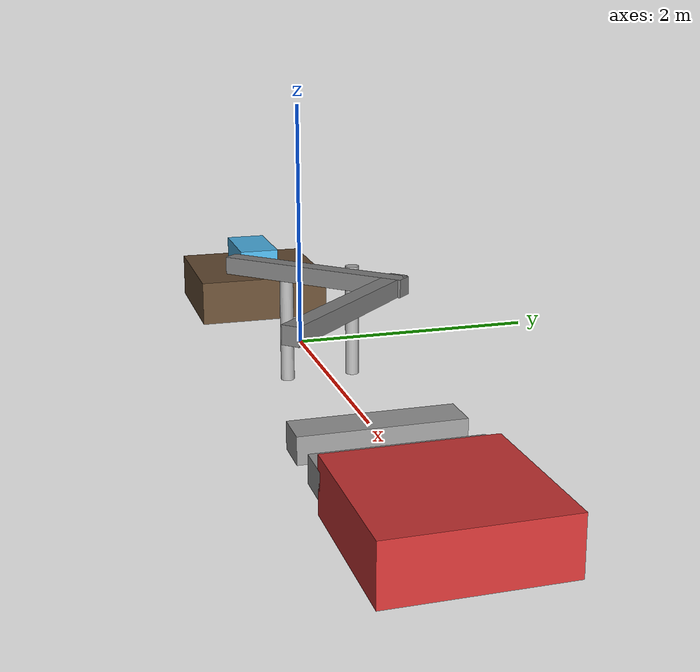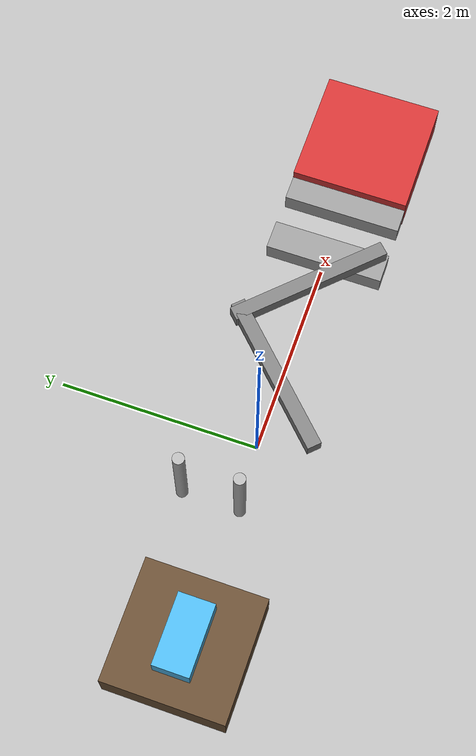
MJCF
<mujoco>
  <option integrator="RK4" timestep="0.002"/>

  <compiler angle="radian" meshdir="../assets" balanceinertia="true"/>

  <worldbody>
    <!-- Освещение и камера -->
    <light name="top" pos="0 0 4" dir="0 0 -1"/>
    <camera name="side" pos="0 -3 1.5" xyaxes="1 0 0 0 1 1.5"/>

    <!-- Стартовая платформа -->
    <body name="start_platform" pos="-2 0 0">
      <geom type="box" size="0.6 0.6 0.2" rgba="0.4 0.3 0.2 1"/>
    </body>

    <!-- Основное тело робота -->
    <body name="base" pos="-2 0 0.3" euler="0 0 0">
      <freejoint name="free_joint"/>
      <geom name="torso" type="box" size="0.35 0.18 0.12" mass="8" rgba="0.3 0.7 0.9 1"/>

      <!-- Передняя правая нога -->
      <body name="fr_hip" pos="0.25 0.12 -0.05">
        <joint name="fr_hip_joint" type="hinge" axis="0 0 1" range="-1.57 1.57"/>
        <geom type="capsule" fromto="0 0 0 0 0 -0.1" size="0.04"/>
        <body name="fr_thigh">
          <joint name="fr_knee_joint" type="hinge" axis="1 0 0" range="-2.0 2.0"/>
          <geom type="capsule" fromto="0 0 0 0 0 -0.25" size="0.035"/>
        </body>
      </body>

      <!-- Передняя левая нога -->
      <body name="fl_hip" pos="0.25 -0.12 -0.05">
        <joint name="fl_hip_joint" type="hinge" axis="0 0 1" range="-1.57 1.57"/>
        <geom type="capsule" fromto="0 0 0 0 0 -0.1" size="0.04"/>
        <body name="fl_thigh">
          <joint name="fl_knee_joint" type="hinge" axis="1 0 0" range="-2.0 2.0"/>
          <geom type="capsule" fromto="0 0 0 0 0 -0.25" size="0.035"/>
        </body>
      </body>

      <!-- Задняя правая нога -->
      <body name="rr_hip" pos="-0.25 0.12 -0.05">
        <joint name="rr_hip_joint" type="hinge" axis="0 0 1" range="-1.57 1.57"/>
        <geom type="capsule" fromto="0 0 0 0 0 -0.1" size="0.04"/>
        <body name="rr_thigh">
          <joint name="rr_knee_joint" type="hinge" axis="1 0 0" range="-2.0 2.0"/>
          <geom type="capsule" fromto="0 0 0 0 0 -0.25" size="0.035"/>
        </body>
      </body>

      <!-- Задняя левая нога -->
      <body name="rl_hip" pos="-0.25 -0.12 -0.05">
        <joint name="rl_hip_joint" type="hinge" axis="0 0 1" range="-1.57 1.57"/>
        <geom type="capsule" fromto="0 0 0 0 0 -0.1" size="0.04"/>
        <body name="rl_thigh">
          <joint name="rl_knee_joint" type="hinge" axis="1 0 0" range="-2.0 2.0"/>
          <geom type="capsule" fromto="0 0 0 0 0 -0.25" size="0.035"/>
        </body>
      </body>
    </body>

    <!-- Препятствия -->
    <!-- Столбы -->
    <body name="pole1" pos="-0.5 0 0">
      <geom type="cylinder" size="0.06 0.5" rgba="0.7 0.7 0.7 1"/>
    </body>
    <body name="pole2" pos="-0.5 0.6 0">
      <geom type="cylinder" size="0.06 0.5" rgba="0.7 0.7 0.7 1"/>
    </body>

    <!-- А-образная конструкция -->
    <body name="a_frame" pos="1.0 0 0">
      <geom type="box" size="0.8 0.07 0.07" euler="0 0 0.785" pos="-0.5 0 0.7"/>
      <geom type="box" size="0.8 0.07 0.07" euler="0 0 -0.785" pos="0.5 0 0.7"/>
    </body>

    <!-- Прыжок -->
    <body name="jump_left" pos="2.2 0 0">
      <geom type="box" size="0.15 0.6 0.1" rgba="0.6 0.6 0.6 1"/>
    </body>
    <body name="jump_right" pos="2.8 0 0">
      <geom type="box" size="0.15 0.6 0.1" rgba="0.6 0.6 0.6 1"/>
    </body>

    <!-- Финишная платформа -->
    <body name="finish" pos="3.5 0 0">
      <geom type="box" size="0.6 0.6 0.2" rgba="0.8 0.2 0.2 1"/>
    </body>
  </worldbody>

  <actuator>
    <!-- Передняя правая нога -->
    <motor joint="fr_hip_joint" gear="300" ctrlrange="-2 2"/>
    <motor joint="fr_knee_joint" gear="400" ctrlrange="-3 3"/>

    <!-- Передняя левая нога -->
    <motor joint="fl_hip_joint" gear="300" ctrlrange="-2 2"/>
    <motor joint="fl_knee_joint" gear="400" ctrlrange="-3 3"/>

    <!-- Задняя правая нога -->
    <motor joint="rr_hip_joint" gear="300" ctrlrange="-2 2"/>
    <motor joint="rr_knee_joint" gear="400" ctrlrange="-3 3"/>

    <!-- Задняя левая нога -->
    <motor joint="rl_hip_joint" gear="300" ctrlrange="-2 2"/>
    <motor joint="rl_knee_joint" gear="400" ctrlrange="-3 3"/>
  </actuator>

  <sensor>
    <framepos objtype="body" objname="base"/>
  </sensor>
</mujoco>
